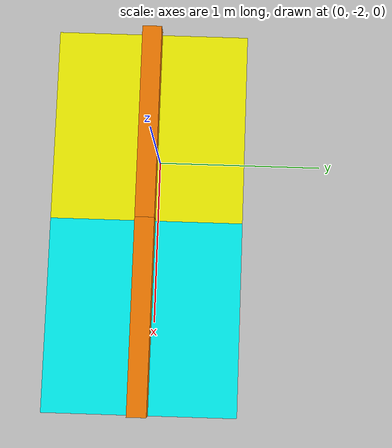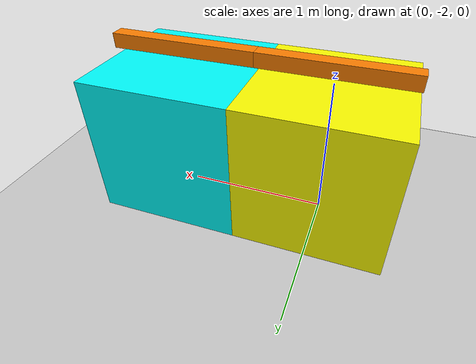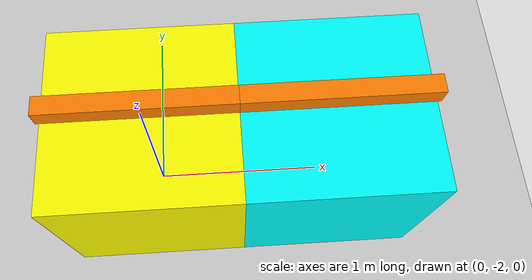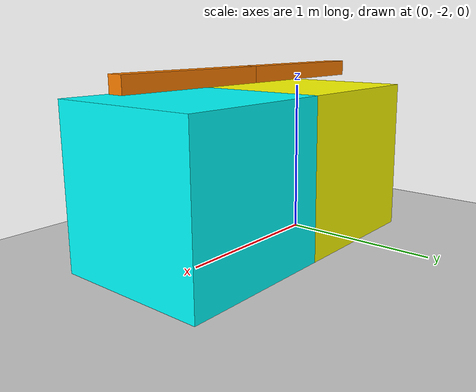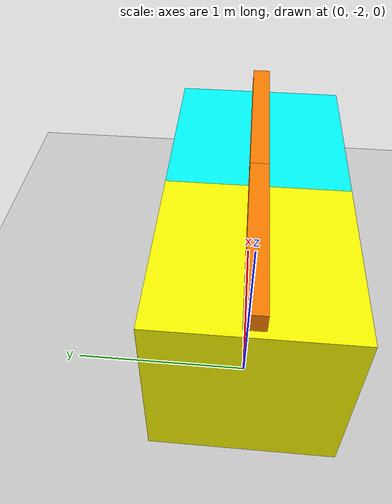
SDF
<?xml version="1.0" ?>

<sdf version="1.6">
  <world name="default">
    <plugin
      filename="gz-sim-apply-link-wrench-system"
      name="gz::sim::systems::ApplyLinkWrench">
    </plugin>

    <physics name="1ms" type="ignore">
      <real_time_factor>0</real_time_factor>
    </physics>

    <plugin filename="gz-sim-physics-system"
      name="gz::sim::systems::Physics">
    </plugin>
    <plugin filename="gz-sim-user-commands-system"
      name="gz::sim::systems::UserCommands">
    </plugin>
    <plugin filename="gz-sim-scene-broadcaster-system"
      name="gz::sim::systems::SceneBroadcaster">
    </plugin>

    <model name="ground_plane">
      <static>true</static>
      <link name="link">
        <collision name="collision">
          <geometry>
            <plane>
              <normal>0 0 1</normal>
              <size>100 100</size>
            </plane>
          </geometry>
        </collision>
        <visual name="visual">
          <geometry>
            <plane>
              <normal>0 0 1</normal>
              <size>100 100</size>
            </plane>
          </geometry>
          <material>
            <ambient>0.8 0.8 0.8 1</ambient>
            <diffuse>0.8 0.8 0.8 1</diffuse>
            <specular>0.8 0.8 0.8 1</specular>
          </material>
        </visual>
      </link>
    </model>

    <model name="model2">
      <pose>0 -2 0.5 0 0 0</pose>
      <link name="base_link">
        <inertial>
          <mass>1.0</mass>
          <inertia>
            <ixx>0.166666667</ixx>
            <ixy>0.00</ixy>
            <ixz>0.00</ixz>
            <iyy>0.166666667</iyy>
            <iyz>0.00</iyz>
            <izz>0.166666667</izz>
          </inertia>
        </inertial>
        <visual name="visual">
          <geometry>
            <box>
              <size>1 1 1</size>
            </box>
          </geometry>
          <material>
            <ambient>1 1 0</ambient>
            <diffuse>1 1 0</diffuse>
            <specular>0.1 0.1 0 1</specular>
          </material>
        </visual>
        <collision name="collision">
          <geometry>
            <box>
              <size>1 1 1</size>
            </box>
          </geometry>
        </collision>
      </link>
      <link name="rotor_link">
        <pose>0 0 0.6 0 0 0</pose>
        <inertial>
          <mass>0.01</mass>
          <inertia>
            <ixx>1.66667E-05</ixx>
            <ixy>0.00</ixy>
            <ixz>0.00</ixz>
            <iyy>0.000841667</iyy>
            <iyz>0.00</iyz>
            <izz>0.000841667</izz>
          </inertia>
        </inertial>
        <visual name="visual">
          <geometry>
            <box>
              <size>1 0.1 0.1</size>
            </box>
          </geometry>
          <material>
            <ambient>1 0.5 0</ambient>
            <diffuse>1 0.5 0</diffuse>
            <specular>0.1 0.1 0 1</specular>
          </material>
        </visual>
        <collision name="collision">
          <geometry>
            <box>
              <size>1 0.1 0.1</size>
            </box>
          </geometry>
        </collision>
      </link>
      <joint name="rotor_joint" type="revolute">
        <parent>base_link</parent>
        <child>rotor_link</child>
        <axis>
          <dynamics>
            <damping>0.5</damping>
          </dynamics>
          <limit>
            <lower>-3.14159265</lower>
            <upper>3.14159265</upper>
          </limit>
          <xyz>0 0 1</xyz>
        </axis>
      </joint>
      <model name="model21">
        <pose>1 0 0 0 0 0</pose>
        <link name="base_link">
          <inertial>
            <mass>1.0</mass>
            <inertia>
              <ixx>0.166666667</ixx>
              <ixy>0.00</ixy>
              <ixz>0.00</ixz>
              <iyy>0.166666667</iyy>
              <iyz>0.00</iyz>
              <izz>0.166666667</izz>
            </inertia>
          </inertial>
          <visual name="visual">
            <geometry>
              <box>
                <size>1 1 1</size>
              </box>
            </geometry>
            <material>
              <ambient>0 1 1</ambient>
              <diffuse>0 1 1</diffuse>
              <specular>0.1 0.1 0 1</specular>
            </material>
          </visual>
          <collision name="collision">
            <geometry>
              <box>
                <size>1 1 1</size>
              </box>
            </geometry>
          </collision>
        </link>
        <link name="rotor_link">
          <pose>0 0 0.6 0 0 0</pose>
          <inertial>
            <mass>0.01</mass>
            <inertia>
              <ixx>1.66667E-05</ixx>
              <ixy>0.00</ixy>
              <ixz>0.00</ixz>
              <iyy>0.000841667</iyy>
              <iyz>0.00</iyz>
              <izz>0.000841667</izz>
            </inertia>
          </inertial>
          <visual name="visual">
            <geometry>
              <box>
                <size>1 0.1 0.1</size>
              </box>
            </geometry>
            <material>
              <ambient>1 0.5 0</ambient>
              <diffuse>1 0.5 0</diffuse>
              <specular>0.1 0.1 0 1</specular>
            </material>
          </visual>
          <collision name="collision">
            <geometry>
              <box>
                <size>1 0.1 0.1</size>
              </box>
            </geometry>
          </collision>
        </link>
        <joint name="rotor_joint" type="revolute">
          <parent>base_link</parent>
          <child>rotor_link</child>
          <axis>
            <dynamics>
              <damping>0.5</damping>
            </dynamics>
            <limit>
              <lower>-3.14159265</lower>
              <upper>3.14159265</upper>
            </limit>
            <xyz>0 0 1</xyz>
          </axis>
        </joint>
      </model>
      <joint name="model21_joint" type="revolute">
        <parent>base_link</parent>
        <child>model21::base_link</child>
        <axis>
          <dynamics>
            <damping>1</damping>
          </dynamics>
          <limit>
            <lower>0</lower>
            <upper>0</upper>
          </limit>
          <xyz>0 0 1</xyz>
        </axis>
      </joint>
      <plugin
        filename="gz-sim-joint-position-controller-system"
        name="gz::sim::systems::JointPositionController">
        <joint_name>rotor_joint</joint_name>
        <topic>/model2/cmd_rotor</topic>
        <p_gain>30</p_gain>
        <i_gain>0.05</i_gain>
      </plugin>
      <plugin
        filename="gz-sim-joint-position-controller-system"
        name="gz::sim::systems::JointPositionController">
        <joint_name>model21::rotor_joint</joint_name>
        <topic>/model21/cmd_rotor</topic>
        <p_gain>30</p_gain>
        <i_gain>0.05</i_gain>
      </plugin>
    </model>

  </world>
</sdf>
